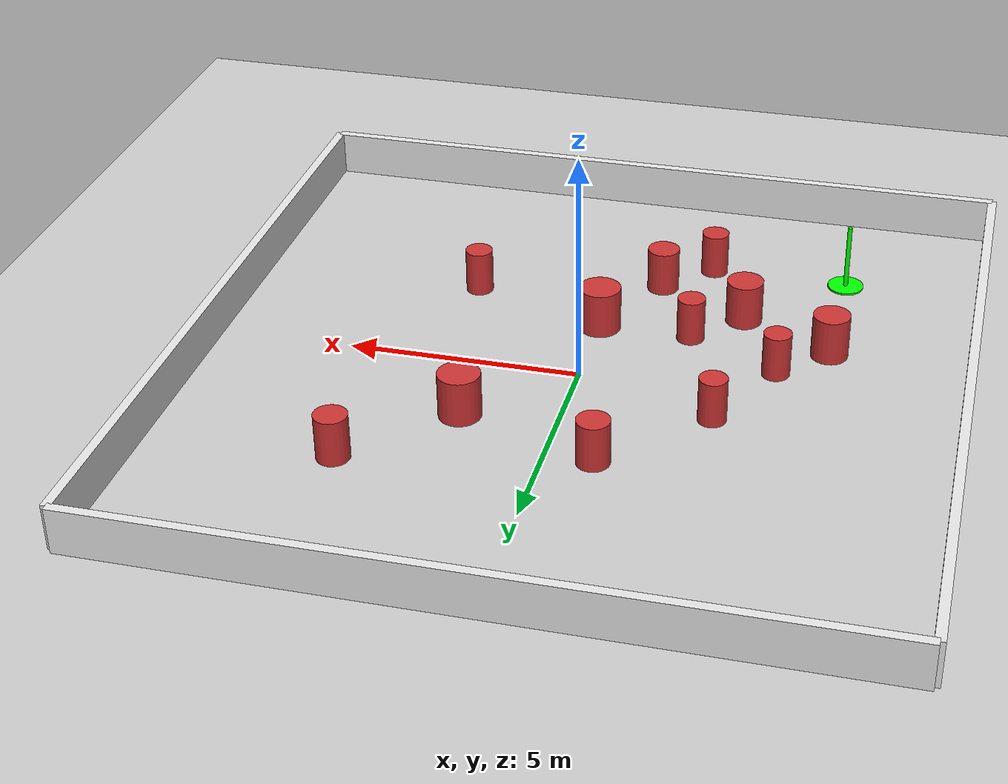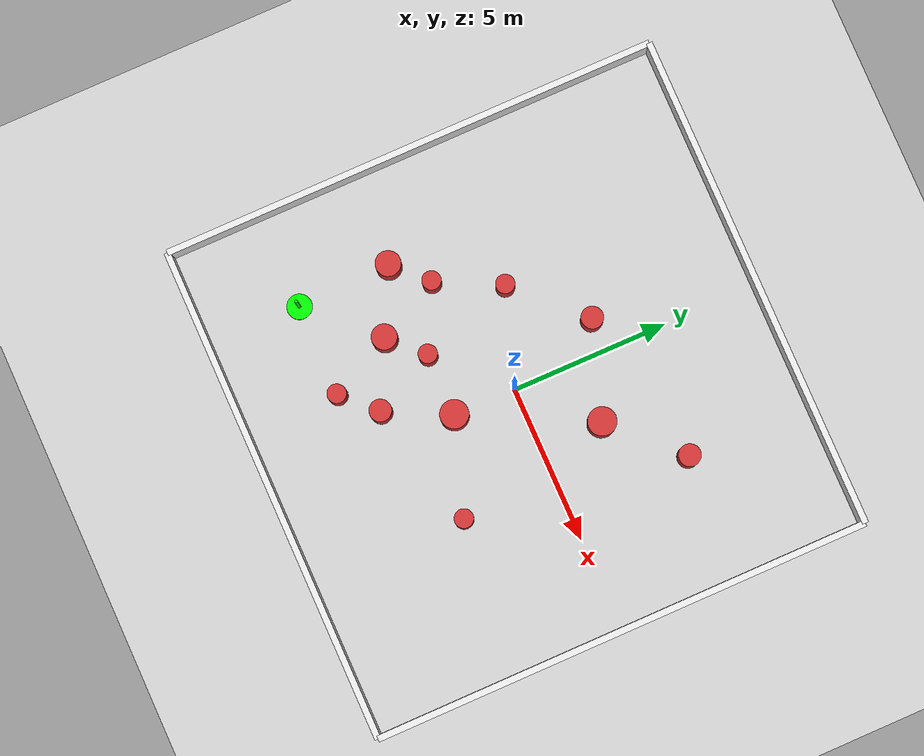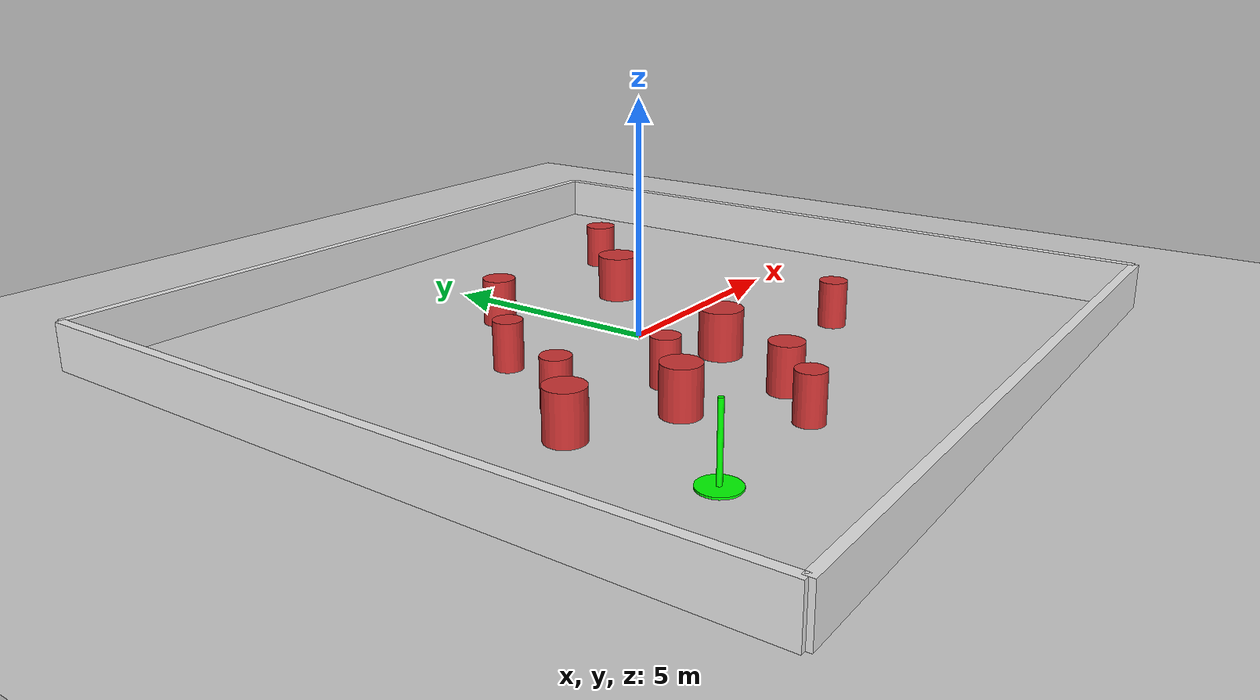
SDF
<?xml version="1.0"?>
<sdf version="1.6">
  <world name="cylinder_test_world3">

    <include><uri>model://sun</uri></include>
    <include><uri>model://ground_plane</uri></include>

    <scene>
      <shadows>false</shadows>
    </scene>

    <physics type="ode">
      <real_time_update_rate>250</real_time_update_rate>
      <max_step_size>0.004</max_step_size>
      <real_time_factor>1</real_time_factor>
      <ode>
        <solver>
          <type>quick</type>
          <iters>50</iters>
          <precon_iters>0</precon_iters>
          <sor>1.300000</sor>
          <use_dynamic_moi_rescaling>1</use_dynamic_moi_rescaling>
        </solver>
        <constraints>
          <cfm>0.00001</cfm>
          <erp>0.2</erp>
          <contact_max_correcting_vel>2000.000000</contact_max_correcting_vel>
          <contact_surface_layer>0.01000</contact_surface_layer>
        </constraints>
      </ode>
    </physics>

    <model name="wall_north">
      <static>true</static><pose>0 8 0.5 0 0 0</pose>
      <link name="link">
        <collision name="col"><geometry><box><size>16 0.2 1</size></box></geometry></collision>
        <visual name="vis"><geometry><box><size>16 0.2 1</size></box></geometry>
          <material><ambient>0.9 0.9 0.9 1</ambient></material>
        </visual>
      </link>
    </model>
    <model name="wall_south">
      <static>true</static><pose>0 -8 0.5 0 0 0</pose>
      <link name="link">
        <collision name="col"><geometry><box><size>16 0.2 1</size></box></geometry></collision>
        <visual name="vis"><geometry><box><size>16 0.2 1</size></box></geometry>
          <material><ambient>0.9 0.9 0.9 1</ambient></material>
        </visual>
      </link>
    </model>
    <model name="wall_east">
      <static>true</static><pose>8 0 0.5 0 0 0</pose>
      <link name="link">
        <collision name="col"><geometry><box><size>0.2 16 1</size></box></geometry></collision>
        <visual name="vis"><geometry><box><size>0.2 16 1</size></box></geometry>
          <material><ambient>0.9 0.9 0.9 1</ambient></material>
        </visual>
      </link>
    </model>
    <model name="wall_west">
      <static>true</static><pose>-8 0 0.5 0 0 0</pose>
      <link name="link">
        <collision name="col"><geometry><box><size>0.2 16 1</size></box></geometry></collision>
        <visual name="vis"><geometry><box><size>0.2 16 1</size></box></geometry>
          <material><ambient>0.9 0.9 0.9 1</ambient></material>
        </visual>
      </link>
    </model>

    <model name="cyl_1">
      <static>true</static><pose>-2 -2 0.5 0 0 0</pose>
      <link name="link"><collision name="col"><geometry><cylinder><radius>0.3</radius><length>1.0</length></cylinder></geometry></collision><visual name="vis"><geometry><cylinder><radius>0.3</radius><length>1.0</length></cylinder></geometry><material><ambient>0.8 0.2 0.2 1</ambient></material></visual></link>
    </model>
    <model name="cyl_2">
      <static>true</static><pose>-3 -3 0.5 0 0 0</pose>
      <link name="link"><collision name="col"><geometry><cylinder><radius>0.4</radius><length>1.0</length></cylinder></geometry></collision><visual name="vis"><geometry><cylinder><radius>0.4</radius><length>1.0</length></cylinder></geometry><material><ambient>0.8 0.2 0.2 1</ambient></material></visual></link>
    </model>
    <model name="cyl_3">
      <static>true</static><pose>-1 -4 0.5 0 0 0</pose>
      <link name="link"><collision name="col"><geometry><cylinder><radius>0.35</radius><length>1.0</length></cylinder></geometry></collision><visual name="vis"><geometry><cylinder><radius>0.35</radius><length>1.0</length></cylinder></geometry><material><ambient>0.8 0.2 0.2 1</ambient></material></visual></link>
    </model>
    <model name="cyl_4">
      <static>true</static><pose>-4 -1 0.5 0 0 0</pose>
      <link name="link"><collision name="col"><geometry><cylinder><radius>0.3</radius><length>1.0</length></cylinder></geometry></collision><visual name="vis"><geometry><cylinder><radius>0.3</radius><length>1.0</length></cylinder></geometry><material><ambient>0.8 0.2 0.2 1</ambient></material></visual></link>
    </model>
    <model name="cyl_5">
      <static>true</static><pose>2 2 0.5 0 0 0</pose>
      <link name="link"><collision name="col"><geometry><cylinder><radius>0.45</radius><length>1.0</length></cylinder></geometry></collision><visual name="vis"><geometry><cylinder><radius>0.45</radius><length>1.0</length></cylinder></geometry><material><ambient>0.8 0.2 0.2 1</ambient></material></visual></link>
    </model>
    <model name="cyl_6">
      <static>true</static><pose>-3 1 0.5 0 0 0</pose>
      <link name="link"><collision name="col"><geometry><cylinder><radius>0.3</radius><length>1.0</length></cylinder></geometry></collision><visual name="vis"><geometry><cylinder><radius>0.3</radius><length>1.0</length></cylinder></geometry><material><ambient>0.8 0.2 0.2 1</ambient></material></visual></link>
    </model>
    <model name="cyl_7">
      <static>true</static><pose>-1 3 0.5 0 0 0</pose>
      <link name="link"><collision name="col"><geometry><cylinder><radius>0.35</radius><length>1.0</length></cylinder></geometry></collision><visual name="vis"><geometry><cylinder><radius>0.35</radius><length>1.0</length></cylinder></geometry><material><ambient>0.8 0.2 0.2 1</ambient></material></visual></link>
    </model>
    <model name="cyl_8">
      <static>true</static><pose>3 -3 0.5 0 0 0</pose>
      <link name="link"><collision name="col"><geometry><cylinder><radius>0.3</radius><length>1.0</length></cylinder></geometry></collision><visual name="vis"><geometry><cylinder><radius>0.3</radius><length>1.0</length></cylinder></geometry><material><ambient>0.8 0.2 0.2 1</ambient></material></visual></link>
    </model>
    <model name="cyl_9">
      <static>true</static><pose>-5 -2 0.5 0 0 0</pose>
      <link name="link"><collision name="col"><geometry><cylinder><radius>0.4</radius><length>1.0</length></cylinder></geometry></collision><visual name="vis"><geometry><cylinder><radius>0.4</radius><length>1.0</length></cylinder></geometry><material><ambient>0.8 0.2 0.2 1</ambient></material></visual></link>
    </model>
    <model name="cyl_10">
      <static>true</static><pose>-2 -5 0.5 0 0 0</pose>
      <link name="link"><collision name="col"><geometry><cylinder><radius>0.3</radius><length>1.0</length></cylinder></geometry></collision><visual name="vis"><geometry><cylinder><radius>0.3</radius><length>1.0</length></cylinder></geometry><material><ambient>0.8 0.2 0.2 1</ambient></material></visual></link>
    </model>
    <model name="cyl_11">
      <static>true</static><pose>4 4 0.5 0 0 0</pose>
      <link name="link"><collision name="col"><geometry><cylinder><radius>0.35</radius><length>1.0</length></cylinder></geometry></collision><visual name="vis"><geometry><cylinder><radius>0.35</radius><length>1.0</length></cylinder></geometry><material><ambient>0.8 0.2 0.2 1</ambient></material></visual></link>
    </model>
    <model name="cyl_12">
      <static>true</static><pose>0 -2 0.5 0 0 0</pose>
      <link name="link"><collision name="col"><geometry><cylinder><radius>0.45</radius><length>1.0</length></cylinder></geometry></collision><visual name="vis"><geometry><cylinder><radius>0.45</radius><length>1.0</length></cylinder></geometry><material><ambient>0.8 0.2 0.2 1</ambient></material></visual></link>
    </model>

    <model name="goal_marker">
      <static>true</static><pose>-5 -5 0.02 0 0 0</pose>
      <link name="link">
        <visual name="vis">
          <geometry><cylinder><radius>0.4</radius><length>0.04</length></cylinder></geometry>
          <material><ambient>0.0 1.0 0.0 1</ambient><diffuse>0.0 1.0 0.0 1</diffuse></material>
        </visual>
      </link>
    </model>
    <model name="goal_pole">
      <static>true</static><pose>-5 -5 0.75 0 0 0</pose>
      <link name="link">
        <visual name="vis">
          <geometry><cylinder><radius>0.05</radius><length>1.5</length></cylinder></geometry>
          <material><ambient>0.0 1.0 0.0 1</ambient><diffuse>0.0 1.0 0.0 1</diffuse></material>
        </visual>
      </link>
    </model>

  </world>
</sdf>
